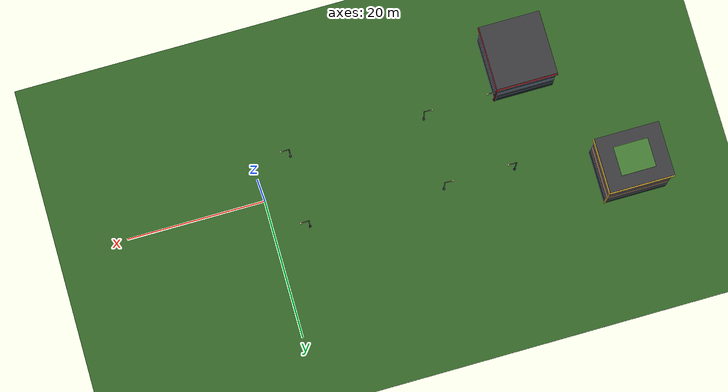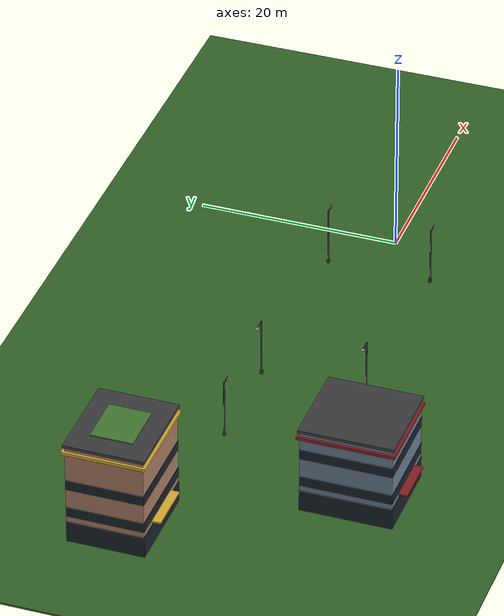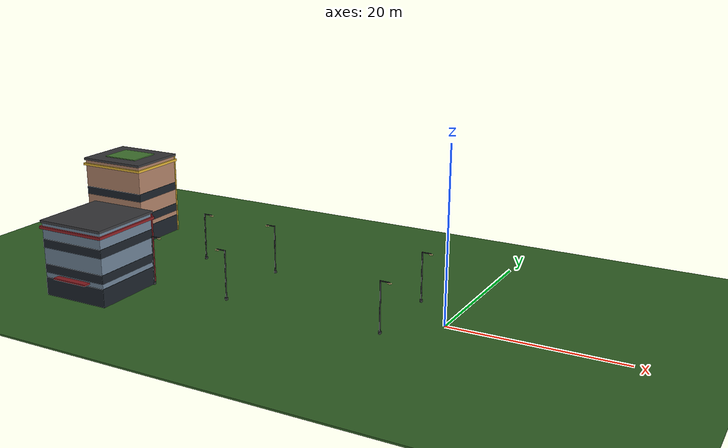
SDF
<sdf version="1.9">
 <world name="city">
  <model name="ground">
   <static>true</static>
   <link name="link">
    <collision name="collision">
     <pose>0 0 -0.1 0 0 0</pose>
     <geometry><box><size>220 220 0.2</size></box></geometry>
     <surface><friction><ode><mu>1.0</mu><mu2>1.0</mu2></ode></friction></surface>
    </collision>
    <visual name="visual">
     <pose>0 0 -0.1 0 0 0</pose>
     <geometry><box><size>220 220 0.2</size></box></geometry>
     <material>
      <ambient>0.17 0.33 0.13 1</ambient>
      <diffuse>0.21 0.41 0.16 1</diffuse>
      <specular>0.05 0.06 0.04 1</specular>
     </material>
    </visual>
   </link>
  </model>
  <model name="building_1">
   <static>true</static>
   <pose>-39.5 -9.5 0 0 0 0</pose>
   <link name="link">
    <collision name="collision">
     <pose>0 0 4.365 0 0 0</pose>
     <geometry><box><size>8.442 8.874 8.73</size></box></geometry>
    </collision>
    <visual name="body">
     <pose>0 0 4.365 0 0 0</pose>
     <geometry><box><size>8.442 8.874 8.73</size></box></geometry>
     <material>
      <ambient>0.42 0.5 0.58 1</ambient>
      <diffuse>0.42 0.5 0.58 1</diffuse>
      <specular>0.16 0.16 0.18 1</specular>
      <pbr><metal><roughness>0.62</roughness><metalness>0.08</metalness></metal></pbr>
     </material>
    </visual>
    <visual name="podium">
     <pose>0 0 1.1 0 0 0</pose>
     <geometry><box><size>8.542 8.974 2.2</size></box></geometry>
     <material>
      <ambient>0.07 0.09 0.11 1</ambient>
      <diffuse>0.1 0.13 0.16 1</diffuse>
      <specular>0.45 0.47 0.5 1</specular>
      <pbr><metal><roughness>0.22</roughness><metalness>0.4</metalness></metal></pbr>
     </material>
    </visual>
    <visual name="canopy">
     <pose>0 -4.837 2.55 0 0 0</pose>
     <geometry><box><size>4.643 0.90 0.18</size></box></geometry>
     <material>
      <ambient>0.56 0.12 0.14 1</ambient>
      <diffuse>0.56 0.12 0.14 1</diffuse>
      <specular>0.25 0.25 0.25 1</specular>
      <pbr><metal><roughness>0.45</roughness><metalness>0</metalness></metal></pbr>
     </material>
    </visual>
    <visual name="corner_column">
     <pose>4.261 4.477 4.365 0 0 0</pose>
     <geometry><box><size>0.16 0.16 8.73</size></box></geometry>
     <material>
      <ambient>0.56 0.12 0.14 1</ambient>
      <diffuse>0.56 0.12 0.14 1</diffuse>
      <specular>0.25 0.25 0.25 1</specular>
      <pbr><metal><roughness>0.45</roughness><metalness>0</metalness></metal></pbr>
     </material>
    </visual>
    <visual name="glass_0">
     <pose>0 0 3.3 0 0 0</pose>
     <geometry><box><size>8.502 8.934 1.05</size></box></geometry>
     <material>
      <ambient>0.075 0.095 0.115 1</ambient>
      <diffuse>0.1 0.13 0.16 1</diffuse>
      <specular>0.55 0.6 0.65 1</specular>
      <emissive>0.06 0.09 0.12 1</emissive>
      <pbr><metal><roughness>0.1</roughness><metalness>0.55</metalness></metal></pbr>
     </material>
    </visual>
    <visual name="glass_1">
     <pose>0 0 6.3 0 0 0</pose>
     <geometry><box><size>8.502 8.934 1.05</size></box></geometry>
     <material>
      <ambient>0.075 0.095 0.115 1</ambient>
      <diffuse>0.1 0.13 0.16 1</diffuse>
      <specular>0.55 0.6 0.65 1</specular>
      <emissive>0.46 0.3 0.12 1</emissive>
      <pbr><metal><roughness>0.1</roughness><metalness>0.55</metalness></metal></pbr>
     </material>
    </visual>
    <visual name="cornice">
     <pose>0 0 8.18 0 0 0</pose>
     <geometry><box><size>8.942 9.374 0.30</size></box></geometry>
     <material>
      <ambient>0.56 0.12 0.14 1</ambient>
      <diffuse>0.56 0.12 0.14 1</diffuse>
      <specular>0.2 0.2 0.2 1</specular>
      <pbr><metal><roughness>0.55</roughness><metalness>0</metalness></metal></pbr>
     </material>
    </visual>
    <visual name="roof">
     <pose>0 0 8.88 0 0 0</pose>
     <geometry><box><size>8.742 9.174 0.30</size></box></geometry>
     <material>
      <ambient>0.24 0.24 0.25 1</ambient>
      <diffuse>0.24 0.24 0.25 1</diffuse>
      <specular>0.18 0.18 0.18 1</specular>
      <pbr><metal><roughness>0.85</roughness><metalness>0</metalness></metal></pbr>
     </material>
    </visual>
   </link>
  </model>
  <model name="building_2">
   <static>true</static>
   <pose>-50.5 9.5 0 0 0 0</pose>
   <link name="link">
    <collision name="collision">
     <pose>0 0 5.231 0 0 0</pose>
     <geometry><box><size>8.941 7.482 10.462</size></box></geometry>
    </collision>
    <visual name="body">
     <pose>0 0 5.231 0 0 0</pose>
     <geometry><box><size>8.941 7.482 10.462</size></box></geometry>
     <material>
      <ambient>0.68 0.5 0.4 1</ambient>
      <diffuse>0.68 0.5 0.4 1</diffuse>
      <specular>0.16 0.16 0.18 1</specular>
      <pbr><metal><roughness>0.62</roughness><metalness>0.08</metalness></metal></pbr>
     </material>
    </visual>
    <visual name="podium">
     <pose>0 0 1.1 0 0 0</pose>
     <geometry><box><size>9.041 7.582 2.2</size></box></geometry>
     <material>
      <ambient>0.07 0.09 0.11 1</ambient>
      <diffuse>0.1 0.13 0.16 1</diffuse>
      <specular>0.45 0.47 0.5 1</specular>
      <pbr><metal><roughness>0.22</roughness><metalness>0.4</metalness></metal></pbr>
     </material>
    </visual>
    <visual name="canopy">
     <pose>0 -4.141 2.55 0 0 0</pose>
     <geometry><box><size>4.918 0.90 0.18</size></box></geometry>
     <material>
      <ambient>0.88 0.7 0.2 1</ambient>
      <diffuse>0.88 0.7 0.2 1</diffuse>
      <specular>0.25 0.25 0.25 1</specular>
      <pbr><metal><roughness>0.45</roughness><metalness>0</metalness></metal></pbr>
     </material>
    </visual>
    <visual name="corner_column">
     <pose>4.511 3.781 5.231 0 0 0</pose>
     <geometry><box><size>0.16 0.16 10.462</size></box></geometry>
     <material>
      <ambient>0.88 0.7 0.2 1</ambient>
      <diffuse>0.88 0.7 0.2 1</diffuse>
      <specular>0.25 0.25 0.25 1</specular>
      <pbr><metal><roughness>0.45</roughness><metalness>0</metalness></metal></pbr>
     </material>
    </visual>
    <visual name="glass_0">
     <pose>0 0 3.3 0 0 0</pose>
     <geometry><box><size>9.001 7.542 1.05</size></box></geometry>
     <material>
      <ambient>0.075 0.095 0.115 1</ambient>
      <diffuse>0.1 0.13 0.16 1</diffuse>
      <specular>0.55 0.6 0.65 1</specular>
      <emissive>0.06 0.09 0.12 1</emissive>
      <pbr><metal><roughness>0.1</roughness><metalness>0.55</metalness></metal></pbr>
     </material>
    </visual>
    <visual name="glass_1">
     <pose>0 0 6.3 0 0 0</pose>
     <geometry><box><size>9.001 7.542 1.05</size></box></geometry>
     <material>
      <ambient>0.075 0.095 0.115 1</ambient>
      <diffuse>0.1 0.13 0.16 1</diffuse>
      <specular>0.55 0.6 0.65 1</specular>
      <emissive>0.06 0.09 0.12 1</emissive>
      <pbr><metal><roughness>0.1</roughness><metalness>0.55</metalness></metal></pbr>
     </material>
    </visual>
    <visual name="cornice">
     <pose>0 0 9.912 0 0 0</pose>
     <geometry><box><size>9.441 7.982 0.30</size></box></geometry>
     <material>
      <ambient>0.88 0.7 0.2 1</ambient>
      <diffuse>0.88 0.7 0.2 1</diffuse>
      <specular>0.2 0.2 0.2 1</specular>
      <pbr><metal><roughness>0.55</roughness><metalness>0</metalness></metal></pbr>
     </material>
    </visual>
    <visual name="roof">
     <pose>0 0 10.612 0 0 0</pose>
     <geometry><box><size>9.241 7.782 0.30</size></box></geometry>
     <material>
      <ambient>0.24 0.24 0.25 1</ambient>
      <diffuse>0.24 0.24 0.25 1</diffuse>
      <specular>0.18 0.18 0.18 1</specular>
      <pbr><metal><roughness>0.85</roughness><metalness>0</metalness></metal></pbr>
     </material>
    </visual>
    <visual name="roof_garden">
     <pose>0 0 10.802 0 0 0</pose>
     <geometry><box><size>4.918 4.115 0.16</size></box></geometry>
     <material>
      <ambient>0.24 0.44 0.18 1</ambient>
      <diffuse>0.28 0.5 0.21 1</diffuse>
      <specular>0.05 0.06 0.04 1</specular>
     </material>
    </visual>
   </link>
  </model>
  <model name="streetlight_4">
   <static>true</static>
   <pose>-35.2 -5.2 0 0 0 0</pose>
   <link name="link">
    <visual name="foundation">
     <pose>0 0 0.15 0 0 0</pose>
     <geometry><cylinder><radius>0.18</radius><length>0.3</length></cylinder></geometry>
     <material>
      <ambient>0.17 0.18 0.19 1</ambient>
      <diffuse>0.17 0.18 0.19 1</diffuse>
      <specular>0.3 0.3 0.32 1</specular>
      <pbr><metal><roughness>0.45</roughness><metalness>0.35</metalness></metal></pbr>
     </material>
    </visual>
    <visual name="pole">
     <pose>0 0 3.0 0 0 0</pose>
     <geometry><cylinder><radius>0.075</radius><length>6</length></cylinder></geometry>
     <material>
      <ambient>0.17 0.18 0.19 1</ambient>
      <diffuse>0.17 0.18 0.19 1</diffuse>
      <specular>0.3 0.3 0.32 1</specular>
      <pbr><metal><roughness>0.45</roughness><metalness>0.35</metalness></metal></pbr>
     </material>
    </visual>
    <visual name="arm">
     <pose>0.55 0 5.95 0 0 0</pose>
     <geometry><box><size>1.10 0.09 0.09</size></box></geometry>
     <material>
      <ambient>0.17 0.18 0.19 1</ambient>
      <diffuse>0.17 0.18 0.19 1</diffuse>
      <specular>0.3 0.3 0.32 1</specular>
      <pbr><metal><roughness>0.45</roughness><metalness>0.35</metalness></metal></pbr>
     </material>
    </visual>
    <visual name="head">
     <pose>1.05 0 5.83 0 0 0</pose>
     <geometry><box><size>0.42 0.20 0.10</size></box></geometry>
     <material>
      <ambient>1 0.9 0.62 1</ambient>
      <diffuse>1 0.9 0.62 1</diffuse>
      <specular>0.4 0.4 0.4 1</specular>
      <emissive>1 0.78 0.42 1</emissive>
     </material>
    </visual>
   </link>
  </model>
  <model name="streetlight_5">
   <static>true</static>
   <pose>-35.2 5.2 0 0 0 0</pose>
   <link name="link">
    <visual name="foundation">
     <pose>0 0 0.15 0 0 0</pose>
     <geometry><cylinder><radius>0.18</radius><length>0.3</length></cylinder></geometry>
     <material>
      <ambient>0.17 0.18 0.19 1</ambient>
      <diffuse>0.17 0.18 0.19 1</diffuse>
      <specular>0.3 0.3 0.32 1</specular>
      <pbr><metal><roughness>0.45</roughness><metalness>0.35</metalness></metal></pbr>
     </material>
    </visual>
    <visual name="pole">
     <pose>0 0 3.0 0 0 0</pose>
     <geometry><cylinder><radius>0.075</radius><length>6</length></cylinder></geometry>
     <material>
      <ambient>0.17 0.18 0.19 1</ambient>
      <diffuse>0.17 0.18 0.19 1</diffuse>
      <specular>0.3 0.3 0.32 1</specular>
      <pbr><metal><roughness>0.45</roughness><metalness>0.35</metalness></metal></pbr>
     </material>
    </visual>
    <visual name="arm">
     <pose>0.55 0 5.95 0 0 0</pose>
     <geometry><box><size>1.10 0.09 0.09</size></box></geometry>
     <material>
      <ambient>0.17 0.18 0.19 1</ambient>
      <diffuse>0.17 0.18 0.19 1</diffuse>
      <specular>0.3 0.3 0.32 1</specular>
      <pbr><metal><roughness>0.45</roughness><metalness>0.35</metalness></metal></pbr>
     </material>
    </visual>
    <visual name="head">
     <pose>1.05 0 5.83 0 0 0</pose>
     <geometry><box><size>0.42 0.20 0.10</size></box></geometry>
     <material>
      <ambient>1 0.9 0.62 1</ambient>
      <diffuse>1 0.9 0.62 1</diffuse>
      <specular>0.4 0.4 0.4 1</specular>
      <emissive>1 0.78 0.42 1</emissive>
     </material>
    </visual>
   </link>
  </model>
  <model name="streetlight_6">
   <static>true</static>
   <pose>-24.8 -5.2 0 0 0 3.142</pose>
   <link name="link">
    <visual name="foundation">
     <pose>0 0 0.15 0 0 0</pose>
     <geometry><cylinder><radius>0.18</radius><length>0.3</length></cylinder></geometry>
     <material>
      <ambient>0.17 0.18 0.19 1</ambient>
      <diffuse>0.17 0.18 0.19 1</diffuse>
      <specular>0.3 0.3 0.32 1</specular>
      <pbr><metal><roughness>0.45</roughness><metalness>0.35</metalness></metal></pbr>
     </material>
    </visual>
    <visual name="pole">
     <pose>0 0 3.0 0 0 0</pose>
     <geometry><cylinder><radius>0.075</radius><length>6</length></cylinder></geometry>
     <material>
      <ambient>0.17 0.18 0.19 1</ambient>
      <diffuse>0.17 0.18 0.19 1</diffuse>
      <specular>0.3 0.3 0.32 1</specular>
      <pbr><metal><roughness>0.45</roughness><metalness>0.35</metalness></metal></pbr>
     </material>
    </visual>
    <visual name="arm">
     <pose>0.55 0 5.95 0 0 0</pose>
     <geometry><box><size>1.10 0.09 0.09</size></box></geometry>
     <material>
      <ambient>0.17 0.18 0.19 1</ambient>
      <diffuse>0.17 0.18 0.19 1</diffuse>
      <specular>0.3 0.3 0.32 1</specular>
      <pbr><metal><roughness>0.45</roughness><metalness>0.35</metalness></metal></pbr>
     </material>
    </visual>
    <visual name="head">
     <pose>1.05 0 5.83 0 0 0</pose>
     <geometry><box><size>0.42 0.20 0.10</size></box></geometry>
     <material>
      <ambient>1 0.9 0.62 1</ambient>
      <diffuse>1 0.9 0.62 1</diffuse>
      <specular>0.4 0.4 0.4 1</specular>
      <emissive>1 0.78 0.42 1</emissive>
     </material>
    </visual>
   </link>
  </model>
  <model name="streetlight_7">
   <static>true</static>
   <pose>-24.8 5.2 0 0 0 3.142</pose>
   <link name="link">
    <visual name="foundation">
     <pose>0 0 0.15 0 0 0</pose>
     <geometry><cylinder><radius>0.18</radius><length>0.3</length></cylinder></geometry>
     <material>
      <ambient>0.17 0.18 0.19 1</ambient>
      <diffuse>0.17 0.18 0.19 1</diffuse>
      <specular>0.3 0.3 0.32 1</specular>
      <pbr><metal><roughness>0.45</roughness><metalness>0.35</metalness></metal></pbr>
     </material>
    </visual>
    <visual name="pole">
     <pose>0 0 3.0 0 0 0</pose>
     <geometry><cylinder><radius>0.075</radius><length>6</length></cylinder></geometry>
     <material>
      <ambient>0.17 0.18 0.19 1</ambient>
      <diffuse>0.17 0.18 0.19 1</diffuse>
      <specular>0.3 0.3 0.32 1</specular>
      <pbr><metal><roughness>0.45</roughness><metalness>0.35</metalness></metal></pbr>
     </material>
    </visual>
    <visual name="arm">
     <pose>0.55 0 5.95 0 0 0</pose>
     <geometry><box><size>1.10 0.09 0.09</size></box></geometry>
     <material>
      <ambient>0.17 0.18 0.19 1</ambient>
      <diffuse>0.17 0.18 0.19 1</diffuse>
      <specular>0.3 0.3 0.32 1</specular>
      <pbr><metal><roughness>0.45</roughness><metalness>0.35</metalness></metal></pbr>
     </material>
    </visual>
    <visual name="head">
     <pose>1.05 0 5.83 0 0 0</pose>
     <geometry><box><size>0.42 0.20 0.10</size></box></geometry>
     <material>
      <ambient>1 0.9 0.62 1</ambient>
      <diffuse>1 0.9 0.62 1</diffuse>
      <specular>0.4 0.4 0.4 1</specular>
      <emissive>1 0.78 0.42 1</emissive>
     </material>
    </visual>
   </link>
  </model>
  <model name="streetlight_16">
   <static>true</static>
   <pose>-5.2 -5.2 0 0 0 0</pose>
   <link name="link">
    <visual name="foundation">
     <pose>0 0 0.15 0 0 0</pose>
     <geometry><cylinder><radius>0.18</radius><length>0.3</length></cylinder></geometry>
     <material>
      <ambient>0.17 0.18 0.19 1</ambient>
      <diffuse>0.17 0.18 0.19 1</diffuse>
      <specular>0.3 0.3 0.32 1</specular>
      <pbr><metal><roughness>0.45</roughness><metalness>0.35</metalness></metal></pbr>
     </material>
    </visual>
    <visual name="pole">
     <pose>0 0 3.0 0 0 0</pose>
     <geometry><cylinder><radius>0.075</radius><length>6</length></cylinder></geometry>
     <material>
      <ambient>0.17 0.18 0.19 1</ambient>
      <diffuse>0.17 0.18 0.19 1</diffuse>
      <specular>0.3 0.3 0.32 1</specular>
      <pbr><metal><roughness>0.45</roughness><metalness>0.35</metalness></metal></pbr>
     </material>
    </visual>
    <visual name="arm">
     <pose>0.55 0 5.95 0 0 0</pose>
     <geometry><box><size>1.10 0.09 0.09</size></box></geometry>
     <material>
      <ambient>0.17 0.18 0.19 1</ambient>
      <diffuse>0.17 0.18 0.19 1</diffuse>
      <specular>0.3 0.3 0.32 1</specular>
      <pbr><metal><roughness>0.45</roughness><metalness>0.35</metalness></metal></pbr>
     </material>
    </visual>
    <visual name="head">
     <pose>1.05 0 5.83 0 0 0</pose>
     <geometry><box><size>0.42 0.20 0.10</size></box></geometry>
     <material>
      <ambient>1 0.9 0.62 1</ambient>
      <diffuse>1 0.9 0.62 1</diffuse>
      <specular>0.4 0.4 0.4 1</specular>
      <emissive>1 0.78 0.42 1</emissive>
     </material>
    </visual>
    <light type="point" name="lamp">
     <pose>1.05 0 5.70 0 0 0</pose>
     <diffuse>1.0 0.80 0.52 1</diffuse>
     <specular>0.5 0.5 0.5 1</specular>
     <attenuation>
      <range>18</range>
      <constant>1.0</constant>
      <linear>0.08</linear>
      <quadratic>0.015</quadratic>
     </attenuation>
     <cast_shadows>false</cast_shadows>
    </light>
   </link>
  </model>
  <model name="streetlight_17">
   <static>true</static>
   <pose>-5.2 5.2 0 0 0 0</pose>
   <link name="link">
    <visual name="foundation">
     <pose>0 0 0.15 0 0 0</pose>
     <geometry><cylinder><radius>0.18</radius><length>0.3</length></cylinder></geometry>
     <material>
      <ambient>0.17 0.18 0.19 1</ambient>
      <diffuse>0.17 0.18 0.19 1</diffuse>
      <specular>0.3 0.3 0.32 1</specular>
      <pbr><metal><roughness>0.45</roughness><metalness>0.35</metalness></metal></pbr>
     </material>
    </visual>
    <visual name="pole">
     <pose>0 0 3.0 0 0 0</pose>
     <geometry><cylinder><radius>0.075</radius><length>6</length></cylinder></geometry>
     <material>
      <ambient>0.17 0.18 0.19 1</ambient>
      <diffuse>0.17 0.18 0.19 1</diffuse>
      <specular>0.3 0.3 0.32 1</specular>
      <pbr><metal><roughness>0.45</roughness><metalness>0.35</metalness></metal></pbr>
     </material>
    </visual>
    <visual name="arm">
     <pose>0.55 0 5.95 0 0 0</pose>
     <geometry><box><size>1.10 0.09 0.09</size></box></geometry>
     <material>
      <ambient>0.17 0.18 0.19 1</ambient>
      <diffuse>0.17 0.18 0.19 1</diffuse>
      <specular>0.3 0.3 0.32 1</specular>
      <pbr><metal><roughness>0.45</roughness><metalness>0.35</metalness></metal></pbr>
     </material>
    </visual>
    <visual name="head">
     <pose>1.05 0 5.83 0 0 0</pose>
     <geometry><box><size>0.42 0.20 0.10</size></box></geometry>
     <material>
      <ambient>1 0.9 0.62 1</ambient>
      <diffuse>1 0.9 0.62 1</diffuse>
      <specular>0.4 0.4 0.4 1</specular>
      <emissive>1 0.78 0.42 1</emissive>
     </material>
    </visual>
    <light type="point" name="lamp">
     <pose>1.05 0 5.70 0 0 0</pose>
     <diffuse>1.0 0.80 0.52 1</diffuse>
     <specular>0.5 0.5 0.5 1</specular>
     <attenuation>
      <range>18</range>
      <constant>1.0</constant>
      <linear>0.08</linear>
      <quadratic>0.015</quadratic>
     </attenuation>
     <cast_shadows>false</cast_shadows>
    </light>
   </link>
  </model>
 </world>
</sdf>
